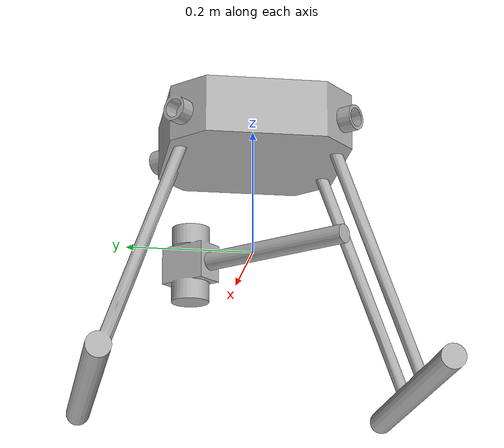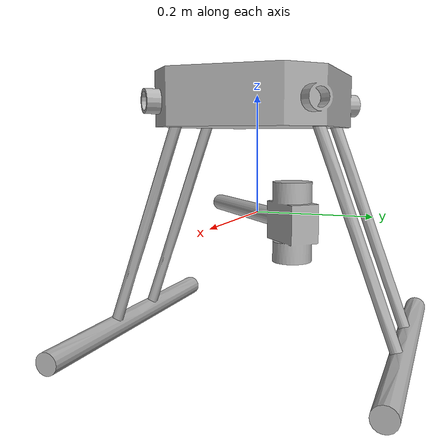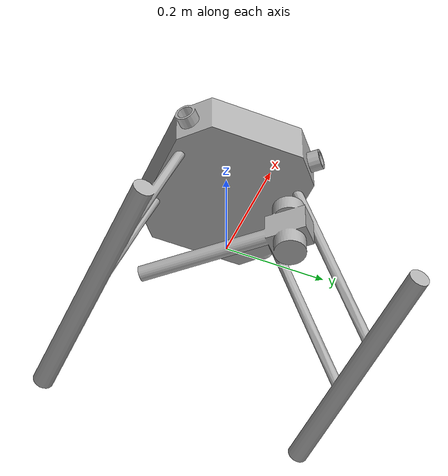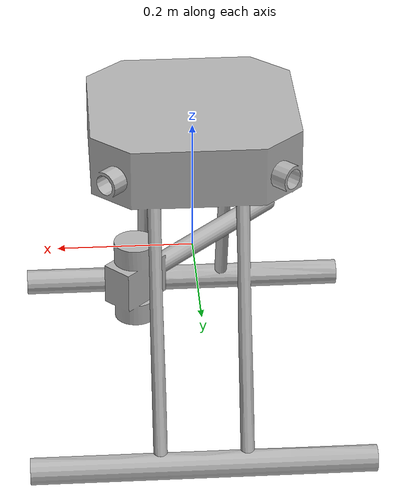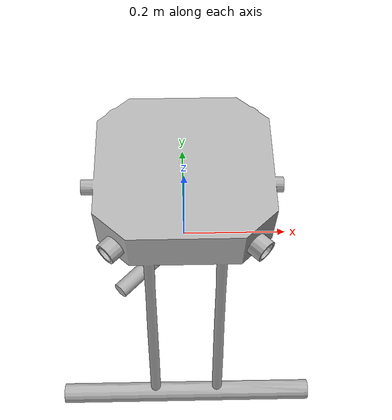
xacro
<?xml version="1.0" ?>
<robot name="ndt2" xmlns:xacro="http://www.ros.org/wiki/xacro">

<xacro:include filename="$(find ndt2)/urdf/materials.xacro" />
<xacro:include filename="$(find ndt2)/urdf/URDF.trans" />
<xacro:include filename="$(find ndt2)/urdf/URDF.gazebo" />
<link name="base_link">
  <inertial>
    <origin rpy="0 0 0" xyz="0.0 3.2052801764670846e-14 -0.020836528404107692"/>
    <mass value="70.27983381048993"/>
    <inertia ixx="2.617289" ixy="-0.0" ixz="0.0" iyy="2.113425" iyz="0.0" izz="1.714442"/>
  </inertial>
  <visual>
    <origin rpy="0 0 0" xyz="0 0 0"/>
    <geometry>
      <mesh filename="package://ndt2/meshes/base_link.stl" scale="0.001 0.001 0.001"/>
    </geometry>
    <material name="silver"/>
  </visual>
  <collision>
    <origin rpy="0 0 0" xyz="0 0 0"/>
    <geometry>
      <mesh filename="package://ndt2/meshes/base_link.stl" scale="0.001 0.001 0.001"/>
    </geometry>
  </collision>
</link>

<link name="Arm_4">
  <inertial>
    <origin rpy="0 0 0" xyz="0.08301419082322248 -0.08301459859447588 2.1510571102112408e-16"/>
    <mass value="4.662701509038038"/>
    <inertia ixx="0.023319" ixy="0.018729" ixz="0.0" iyy="0.023319" iyz="-0.0" izz="0.038931"/>
  </inertial>
  <visual>
    <origin rpy="0 0 0" xyz="-0.224433 0.234052 -0.04"/>
    <geometry>
      <mesh filename="package://ndt2/meshes/arm.stl" scale="0.001 0.001 0.001"/>
    </geometry>
    <material name="silver"/>
  </visual>
  <collision>
    <origin rpy="0 0 0" xyz="-0.224433 0.234052 -0.04"/>
    <geometry>
      <mesh filename="package://ndt2/meshes/arm.stl" scale="0.001 0.001 0.001"/>
    </geometry>
  </collision>
</link>

<link name="Arm_2">
  <inertial>
    <origin rpy="0 0 0" xyz="-0.08301419082322048 0.08301459859447793 2.5673907444456745e-16"/>
    <mass value="4.662701509038038"/>
    <inertia ixx="0.023319" ixy="0.018729" ixz="0.0" iyy="0.023319" iyz="0.0" izz="0.038931"/>
  </inertial>
  <visual>
    <origin rpy="0 0 0" xyz="0.224433 -0.234052 -0.04"/>
    <geometry>
      <mesh filename="package://ndt2/meshes/arm.stl" scale="0.001 0.001 0.001"/>
    </geometry>
    <material name="silver"/>
  </visual>
  <collision>
    <origin rpy="0 0 0" xyz="0.224433 -0.234052 -0.04"/>
    <geometry>
      <mesh filename="package://ndt2/meshes/arm.stl" scale="0.001 0.001 0.001"/>
    </geometry>
  </collision>
</link>

<link name="Arm_3">
  <inertial>
    <origin rpy="0 0 0" xyz="-0.08301419082322053 -0.08301459859447782 2.498001805406602e-16"/>
    <mass value="4.662701509038038"/>
    <inertia ixx="0.023319" ixy="-0.018729" ixz="-0.0" iyy="0.023319" iyz="0.0" izz="0.038931"/>
  </inertial>
  <visual>
    <origin rpy="0 0 0" xyz="0.224433 0.234052 -0.04"/>
    <geometry>
      <mesh filename="package://ndt2/meshes/arm.stl" scale="0.001 0.001 0.001"/>
    </geometry>
    <material name="silver"/>
  </visual>
  <collision>
    <origin rpy="0 0 0" xyz="0.224433 0.234052 -0.04"/>
    <geometry>
      <mesh filename="package://ndt2/meshes/arm.stl" scale="0.001 0.001 0.001"/>
    </geometry>
  </collision>
</link>

<link name="Arm_1">
  <inertial>
    <origin rpy="0 0 0" xyz="0.08301419082322248 0.08301459859447594 2.2898349882893854e-16"/>
    <mass value="4.662701509038038"/>
    <inertia ixx="0.023319" ixy="-0.018729" ixz="0.0" iyy="0.023319" iyz="-0.0" izz="0.038931"/>
  </inertial>
  <visual>
    <origin rpy="0 0 0" xyz="-0.224433 -0.234052 -0.04"/>
    <geometry>
      <mesh filename="package://ndt2/meshes/arm.stl" scale="0.001 0.001 0.001"/>
    </geometry>
    <material name="silver"/>
  </visual>
  <collision>
    <origin rpy="0 0 0" xyz="-0.224433 -0.234052 -0.04"/>
    <geometry>
      <mesh filename="package://ndt2/meshes/arm.stl" scale="0.001 0.001 0.001"/>
    </geometry>
  </collision>
</link>

<joint name="Rev2" type="continuous">
  <origin rpy="0 0 0" xyz="0.224433 -0.234052 0.04"/>
  <parent link="base_link"/>
  <child link="Arm_4"/>
  <axis xyz="-0.707107 0.707107 0.0"/>
  <limit effort="30" velocity="1.0"  />
</joint>

<joint name="Rev3" type="continuous">
  <origin rpy="0 0 0" xyz="-0.224433 0.234052 0.04"/>
  <parent link="base_link"/>
  <child link="Arm_2"/>
  <axis xyz="-0.707107 0.707107 -0.0"/>
  <limit effort="30" velocity="1.0"  />
</joint>

<joint name="Rev4" type="continuous">
  <origin rpy="0 0 0" xyz="-0.224433 -0.234052 0.04"/>
  <parent link="base_link"/>
  <child link="Arm_3"/>
  <axis xyz="0.707107 0.707107 0.0"/>
  <limit effort="30" velocity="1.0"  />
</joint>

<joint name="Rev5" type="continuous">
  <origin rpy="0 0 0" xyz="0.224433 0.234052 0.04"/>
  <parent link="base_link"/>
  <child link="Arm_1"/>
  <axis xyz="-0.707107 -0.707107 0.0"/>
  <limit effort="30" velocity="1.0"  />
</joint>

</robot>

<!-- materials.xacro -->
<robot name="ndt2" xmlns:xacro="http://www.ros.org/wiki/xacro" >

<material name="silver">
  <color rgba="0.700 0.700 0.700 1.000"/>
</material>

</robot>
